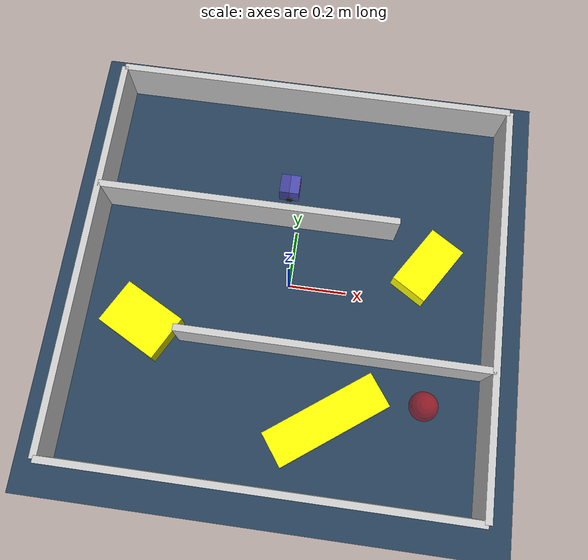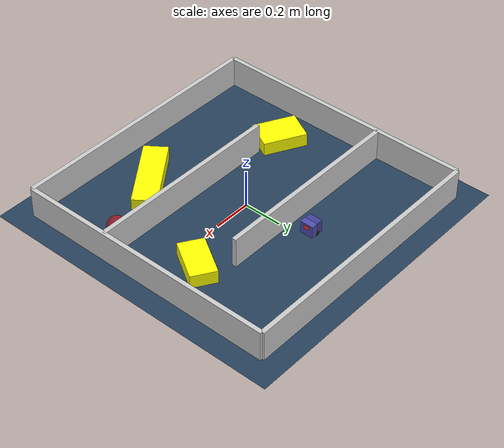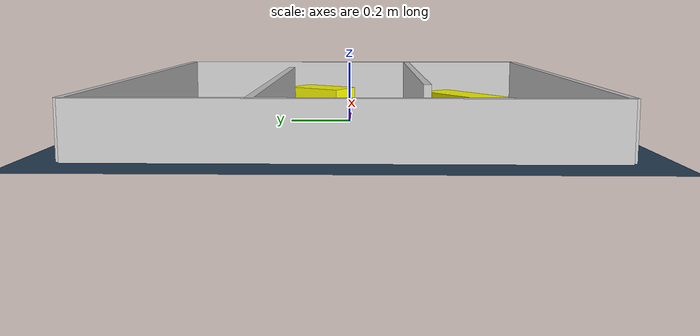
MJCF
<?xml version='1.0' encoding='utf-8'?>
<mujoco model="generated_environment">
  <option timestep="0.002" integrator="implicitfast" cone="elliptic" iterations="100" gravity="0 0 -9.81" />
  <default>
    <geom density="1" />
  </default>
  <asset>
    <texture builtin="gradient" height="3072" rgb1="0.3 0.5 0.7" rgb2="0 0 0" type="skybox" width="512" />
    <texture builtin="checker" height="300" mark="edge" markrgb="0.8 0.8 0.8" name="groundplane" rgb1="0.2 0.3 0.4" rgb2="0.1 0.2 0.3" type="2d" width="300" />
    <material name="groundplane" reflectance="0.2" texrepeat="5 5" texture="groundplane" texuniform="true" />
    <material name="robot" rgba="1.0 1.0 0.0 1.0" />
  </asset>
  <worldbody>
    <light dir="0 0 -1" directional="true" pos="0 0 1.5" />
    <geom condim="4" friction="0.5 0.005 0.001" material="groundplane" name="floor" size="0 0 0.05" type="plane" />
    <body name="walls">
      <geom name="wall_1" condim="4" pos="-0.699000 0.000000 0.080000" rgba="0.800000011920929 0.800000011920929 0.800000011920929 1.0" size="0.011650 0.699000 0.080000" type="box" />
      <geom name="wall_2" condim="4" pos="0.699000 0.000000 0.080000" rgba="0.800000011920929 0.800000011920929 0.800000011920929 1.0" size="0.011650 0.699000 0.080000" type="box" />
      <geom name="wall_3" condim="4" pos="0.000000 -0.699000 0.080000" rgba="0.800000011920929 0.800000011920929 0.800000011920929 1.0" size="0.699000 0.011650 0.080000" type="box" />
      <geom name="wall_4" condim="4" pos="0.000000 0.699000 0.080000" rgba="0.800000011920929 0.800000011920929 0.800000011920929 1.0" size="0.699000 0.011650 0.080000" type="box" />
      <geom name="wall_5" condim="4" pos="0.174750 -0.233000 0.080000" rgba="0.800000011920929 0.800000011920929 0.800000011920929 1.0" size="0.524250 0.011650 0.080000" type="box" />
      <geom name="wall_6" condim="4" pos="-0.174750 0.233000 0.080000" rgba="0.800000011920929 0.800000011920929 0.800000011920929 1.0" size="0.524250 0.011650 0.080000" type="box" />
    </body>
    <body name="car" pos="-0.044999999999999825 0.3550000000000001 0.010000">
      <freejoint name="car_freejoint" />
      <inertial pos="0.000000 0 0.037500" mass="0.350000" diaginertia="0.000266 0.000266 0.000286" />
      <geom name="front_chassis_collision" type="box" pos="0.017500 0 0.037500" size="0.017500 0.035000 0.032500" rgba="0.3 0.3 0.7 1" />
      <geom name="rear_chassis_collision" type="box" pos="-0.017500 0 0.037500" size="0.017500 0.035000 0.032500" rgba="0.25 0.25 0.6 1" />
      <geom name="front_marker" type="box" pos="0.034000 0 0.050500" size="0.002000 0.015000 0.010000" rgba="1.0 0.2 0.2 1" contype="0" conaffinity="0" />
      <body name="rear_support_body" pos="-0.030000 0.000000 0.002500">
        <joint name="rear_caster_joint" type="ball" damping="0.0001" />
        <inertial pos="0 0 0" mass="0.025000" diaginertia="0.000001 0.000001 0.000001" />
        <geom name="rear_support" type="sphere" pos="0 0 0" size="0.002500" friction="0.000000 0.000000 0.000000" rgba="0.7 0.1 0.1 1" />
      </body>
      <body name="front_support_body" pos="0.030000 0.000000 0.002500">
        <joint name="front_caster_joint" type="ball" damping="0.0001" />
        <inertial pos="0 0 0" mass="0.025000" diaginertia="0.000001 0.000001 0.000001" />
        <geom name="front_support" type="sphere" pos="0 0 0" size="0.002500" friction="0.000000 0.000000 0.000000" rgba="0.1 0.7 0.1 1" />
      </body>
      <body name="left_wheel" pos="0.000000 0.037500 0.015000">
        <inertial pos="0 0 0" mass="0.050000" diaginertia="0.000003 0.000006 0.000003" />
        <joint name="left_wheel_joint" type="hinge" axis="0 1 0" />
        <geom name="left_wheel_collision" type="cylinder" size="0.015000 0.000500" euler="90 0 0" rgba="0.1 0.1 0.1 1" />
      </body>
      <body name="right_wheel" pos="0.000000 -0.037500 0.015000">
        <inertial pos="0 0 0" mass="0.050000" diaginertia="0.000003 0.000006 0.000003" />
        <joint name="right_wheel_joint" type="hinge" axis="0 1 0" />
        <geom name="right_wheel_collision" type="cylinder" size="0.015000 0.000500" euler="90 0 0" rgba="0.1 0.1 0.1 1" />
      </body>
    </body>
    <body name="obstacle_0_movable">
      <geom name="obstacle_0_movable" condim="4" pos="-0.48071058947174106 -0.20332217948303277 0.035" euler="0 0 332.12565736434243" friction="0.0 0.005 0.001" rgba="1 1 0 1" size="0.11446400232705073 0.08236726629090997 0.035" type="box" mass="0.1" />
      <joint type="free" />
    </body>
    <body name="obstacle_1_movable">
      <geom name="obstacle_1_movable" condim="4" pos="0.4706234323642875 0.12182494546753486 0.035" euler="0 0 237.827621577839" friction="0.0 0.005 0.001" rgba="1 1 0 1" size="0.11467685752733564 0.06622044352861144 0.035" type="box" mass="0.1" />
      <joint type="free" />
    </body>
    <body name="obstacle_2_movable">
      <geom name="obstacle_2_movable" condim="4" pos="0.18329080742006076 -0.44923591961126225 0.035" euler="0 0 126.22249750538494" friction="0.0 0.005 0.001" rgba="1 1 0 1" size="0.06268310931672356 0.2049799129851383 0.035" type="box" mass="0.1" />
      <joint type="free" />
    </body>
    <site name="goal" type="sphere" pos="0.505 -0.35499999999999987 0.0" size="0.05" rgba="1 0 0 0.5" />
  </worldbody>
  <actuator>
    <velocity name="left_wheel_drive" joint="left_wheel_joint" ctrlrange="-25.000000 25.000000" kv="0.750000" forcerange="-0.300000 0.300000" />
    <velocity name="right_wheel_drive" joint="right_wheel_joint" ctrlrange="-25.000000 25.000000" kv="0.750000" forcerange="-0.300000 0.300000" />
  </actuator>
</mujoco>
